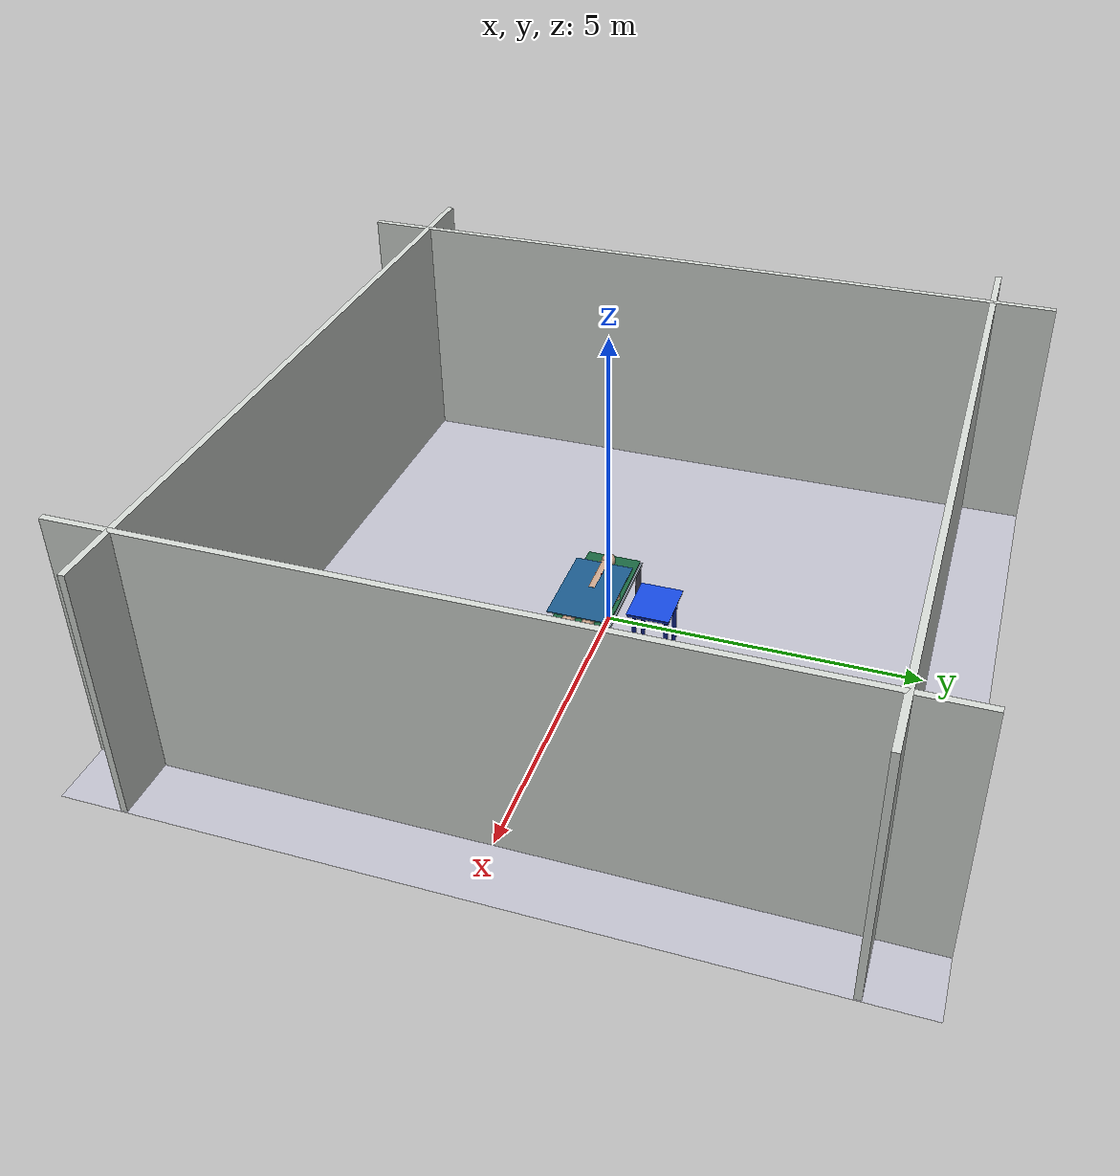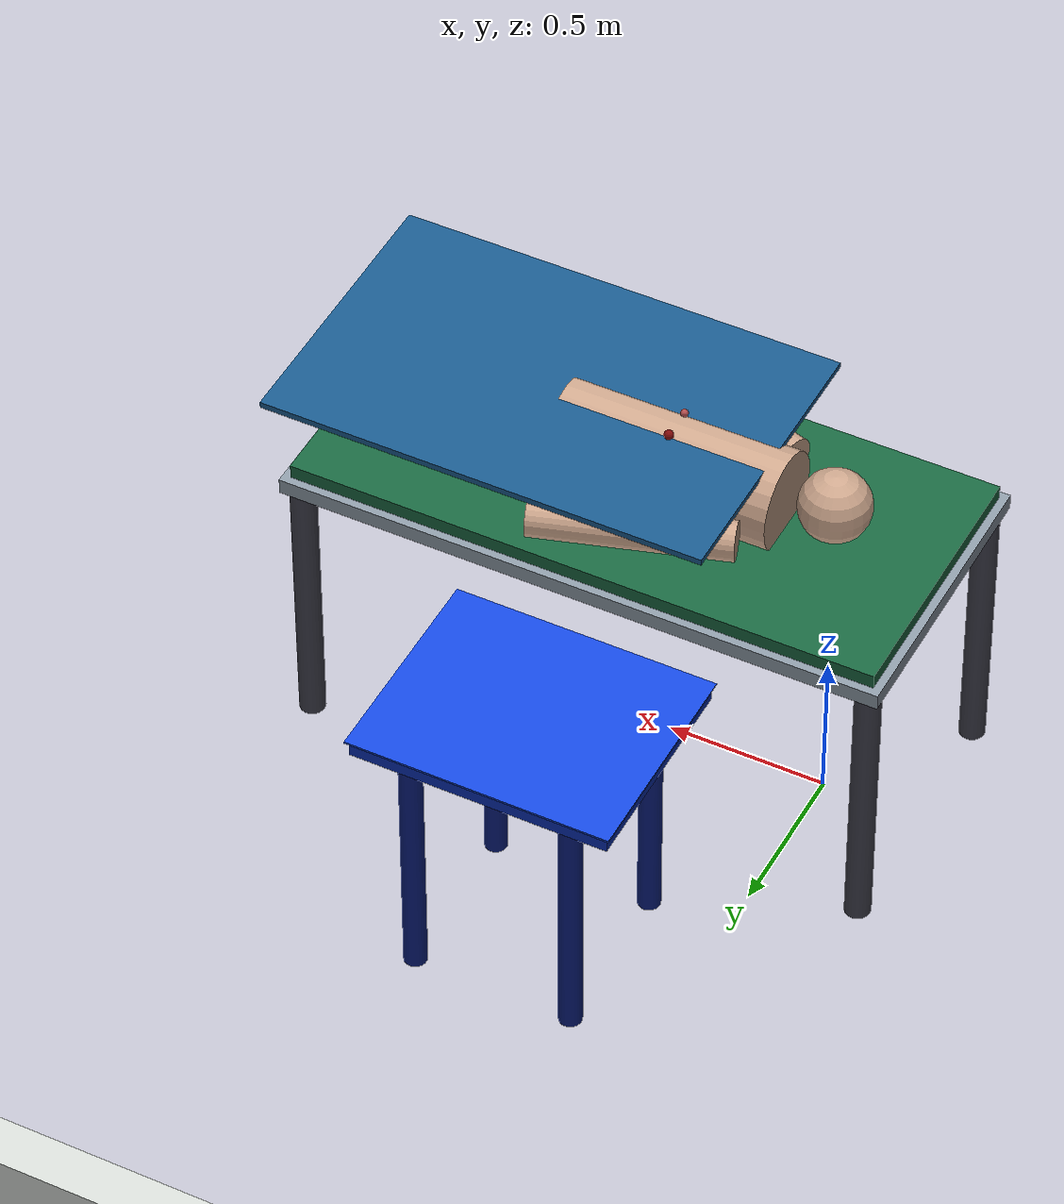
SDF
<sdf version="1.9">
 <world name="surgical_or_world">
  <physics name="default_physics" default="true" type="ode">
   <real_time_update_rate>1000.0</real_time_update_rate>
   <max_step_size>0.001</max_step_size>
   <real_time_factor>1</real_time_factor>
  </physics>
  <plugin filename="gz-sim-physics-system" name="gz::sim::systems::Physics"/>
  <plugin filename="gz-sim-user-commands-system" name="gz::sim::systems::UserCommands"/>
  <plugin filename="gz-sim-scene-broadcaster-system" name="gz::sim::systems::SceneBroadcaster"/>
  <plugin filename="gz-sim-sensors-system" name="gz::sim::systems::Sensors">
   <render_engine>ogre2</render_engine>
  </plugin>
  <plugin filename="gz-sim-contact-system" name="gz::sim::systems::Contact"/>
  <plugin filename="gz-sim-forcetorque-system" name="gz::sim::systems::ForceTorque"/>
  <light type="spot" name="surgical_light_main">
   <pose>0 0 3.5 0 0 0</pose>
   <diffuse>1.0 1.0 0.95 1</diffuse>
   <specular>0.9 0.9 0.85 1</specular>
   <attenuation>
    <range>12</range>
    <constant>0.08</constant>
    <linear>0.01</linear>
    <quadratic>0.001</quadratic>
   </attenuation>
   <direction>0 0 -1</direction>
   <spot><inner_angle>1.2</inner_angle><outer_angle>1.8</outer_angle><falloff>1.0</falloff></spot>
  </light>
  <light type="directional" name="ambient_or">
   <cast_shadows>false</cast_shadows>
   <pose>0 0 5 0 0 0</pose>
   <diffuse>0.45 0.45 0.50 1</diffuse>
   <specular>0.1 0.1 0.1 1</specular>
   <direction>0 0 -1</direction>
  </light>
  <model name="or_floor">
   <static>true</static>
   <link name="floor_link">
    <collision name="floor_collision">
     <geometry><plane><normal>0 0 1</normal><size>12 12</size></plane></geometry>
     <surface><friction><ode><mu>0.9</mu><mu2>0.9</mu2></ode></friction></surface>
    </collision>
    <visual name="floor_visual">
     <geometry><plane><normal>0 0 1</normal><size>12 12</size></plane></geometry>
     <material><ambient>0.80 0.80 0.85 1</ambient><diffuse>0.75 0.75 0.80 1</diffuse></material>
    </visual>
   </link>
  </model>
  <model name="or_wall_back">
   <static>true</static>
   <pose>5 0 2 0 0 0</pose>
   <link name="wall_link">
    <collision name="c"><geometry><box><size>0.1 12 4</size></box></geometry></collision>
    <visual name="v">
     <geometry><box><size>0.1 12 4</size></box></geometry>
     <material><ambient>0.85 0.87 0.85 1</ambient><diffuse>0.83 0.85 0.83 1</diffuse></material>
    </visual>
   </link>
  </model>
  <model name="or_wall_front">
   <static>true</static>
   <pose>-5 0 2 0 0 0</pose>
   <link name="wall_link">
    <collision name="c"><geometry><box><size>0.1 12 4</size></box></geometry></collision>
    <visual name="v">
     <geometry><box><size>0.1 12 4</size></box></geometry>
     <material><ambient>0.85 0.87 0.85 1</ambient><diffuse>0.83 0.85 0.83 1</diffuse></material>
    </visual>
   </link>
  </model>
  <model name="or_wall_left">
   <static>true</static>
   <pose>0 5 2 0 0 0</pose>
   <link name="wall_link">
    <collision name="c"><geometry><box><size>12 0.1 4</size></box></geometry></collision>
    <visual name="v">
     <geometry><box><size>12 0.1 4</size></box></geometry>
     <material><ambient>0.85 0.87 0.85 1</ambient><diffuse>0.83 0.85 0.83 1</diffuse></material>
    </visual>
   </link>
  </model>
  <model name="or_wall_right">
   <static>true</static>
   <pose>0 -5 2 0 0 0</pose>
   <link name="wall_link">
    <collision name="c"><geometry><box><size>12 0.1 4</size></box></geometry></collision>
    <visual name="v">
     <geometry><box><size>12 0.1 4</size></box></geometry>
     <material><ambient>0.85 0.87 0.85 1</ambient><diffuse>0.83 0.85 0.83 1</diffuse></material>
    </visual>
   </link>
  </model>
  <model name="robot_table_leg1">
   <static>true</static>
   <pose>0.75 1.15 0.425 0 0 0</pose>
   <link name="l">
    <collision name="c">
     <geometry><cylinder><radius>0.035</radius><length>0.85</length></cylinder></geometry>
    </collision>
    <visual name="v">
     <geometry><cylinder><radius>0.035</radius><length>0.85</length></cylinder></geometry>
     <material><ambient>0.05 0.15 0.55 1</ambient><diffuse>0.04 0.12 0.50 1</diffuse></material>
    </visual>
   </link>
  </model>
  <model name="robot_table_leg2">
   <static>true</static>
   <pose>0.75 0.65 0.425 0 0 0</pose>
   <link name="l">
    <collision name="c">
     <geometry><cylinder><radius>0.035</radius><length>0.85</length></cylinder></geometry>
    </collision>
    <visual name="v">
     <geometry><cylinder><radius>0.035</radius><length>0.85</length></cylinder></geometry>
     <material><ambient>0.05 0.15 0.55 1</ambient><diffuse>0.04 0.12 0.50 1</diffuse></material>
    </visual>
   </link>
  </model>
  <model name="robot_table_leg3">
   <static>true</static>
   <pose>0.25 1.15 0.425 0 0 0</pose>
   <link name="l">
    <collision name="c">
     <geometry><cylinder><radius>0.035</radius><length>0.85</length></cylinder></geometry>
    </collision>
    <visual name="v">
     <geometry><cylinder><radius>0.035</radius><length>0.85</length></cylinder></geometry>
     <material><ambient>0.05 0.15 0.55 1</ambient><diffuse>0.04 0.12 0.50 1</diffuse></material>
    </visual>
   </link>
  </model>
  <model name="robot_table_leg4">
   <static>true</static>
   <pose>0.25 0.65 0.425 0 0 0</pose>
   <link name="l">
    <collision name="c">
     <geometry><cylinder><radius>0.035</radius><length>0.85</length></cylinder></geometry>
    </collision>
    <visual name="v">
     <geometry><cylinder><radius>0.035</radius><length>0.85</length></cylinder></geometry>
     <material><ambient>0.05 0.15 0.55 1</ambient><diffuse>0.04 0.12 0.50 1</diffuse></material>
    </visual>
   </link>
  </model>
  <model name="robot_table_surface">
   <static>true</static>
   <pose>0.50 0.9 0.875 0 0 0</pose>
   <link name="table_link">
    <collision name="table_col">
     <geometry><box><size>0.80 0.65 0.05</size></box></geometry>
     <surface><friction><ode><mu>0.85</mu><mu2>0.85</mu2></ode></friction></surface>
    </collision>
    <visual name="table_vis">
     <geometry><box><size>0.80 0.65 0.05</size></box></geometry>
     <material>
      <ambient>0.05 0.20 0.75 1</ambient>
      <diffuse>0.04 0.18 0.70 1</diffuse>
      <specular>0.25 0.35 0.80 1</specular>
     </material>
    </visual>
   </link>
  </model>
  <model name="robot_table_trim">
   <static>true</static>
   <pose>0.50 0.9 0.903 0 0 0</pose>
   <link name="trim_link">
    <visual name="trim_vis">
     <geometry><box><size>0.82 0.67 0.006</size></box></geometry>
     <material>
      <ambient>0.10 0.30 0.90 1</ambient>
      <diffuse>0.08 0.28 0.88 1</diffuse>
      <specular>0.5 0.6 1.0 1</specular>
     </material>
    </visual>
   </link>
  </model>
  <model name="or_table_leg1">
   <static>true</static>
   <pose>1.5 0.4 0.45 0 0 0</pose>
   <link name="l">
    <collision name="c">
     <geometry><cylinder><radius>0.04</radius><length>0.9</length></cylinder></geometry>
    </collision>
    <visual name="v">
     <geometry><cylinder><radius>0.04</radius><length>0.9</length></cylinder></geometry>
     <material><ambient>0.3 0.3 0.35 1</ambient><diffuse>0.25 0.25 0.3 1</diffuse></material>
    </visual>
   </link>
  </model>
  <model name="or_table_leg2">
   <static>true</static>
   <pose>1.5 -0.4 0.45 0 0 0</pose>
   <link name="l">
    <collision name="c">
     <geometry><cylinder><radius>0.04</radius><length>0.9</length></cylinder></geometry>
    </collision>
    <visual name="v">
     <geometry><cylinder><radius>0.04</radius><length>0.9</length></cylinder></geometry>
     <material><ambient>0.3 0.3 0.35 1</ambient><diffuse>0.25 0.25 0.3 1</diffuse></material>
    </visual>
   </link>
  </model>
  <model name="or_table_leg3">
   <static>true</static>
   <pose>-0.3 0.4 0.45 0 0 0</pose>
   <link name="l">
    <collision name="c">
     <geometry><cylinder><radius>0.04</radius><length>0.9</length></cylinder></geometry>
    </collision>
    <visual name="v">
     <geometry><cylinder><radius>0.04</radius><length>0.9</length></cylinder></geometry>
     <material><ambient>0.3 0.3 0.35 1</ambient><diffuse>0.25 0.25 0.3 1</diffuse></material>
    </visual>
   </link>
  </model>
  <model name="or_table_leg4">
   <static>true</static>
   <pose>-0.3 -0.4 0.45 0 0 0</pose>
   <link name="l">
    <collision name="c">
     <geometry><cylinder><radius>0.04</radius><length>0.9</length></cylinder></geometry>
    </collision>
    <visual name="v">
     <geometry><cylinder><radius>0.04</radius><length>0.9</length></cylinder></geometry>
     <material><ambient>0.3 0.3 0.35 1</ambient><diffuse>0.25 0.25 0.3 1</diffuse></material>
    </visual>
   </link>
  </model>
  <model name="or_table_surface">
   <static>true</static>
   <pose>0.6 0 0.93 0 0 0</pose>
   <link name="table_link">
    <collision name="table_col">
     <geometry><box><size>1.9 0.9 0.05</size></box></geometry>
     <surface><friction><ode><mu>0.7</mu><mu2>0.7</mu2></ode></friction></surface>
    </collision>
    <visual name="table_vis">
     <geometry><box><size>1.9 0.9 0.05</size></box></geometry>
     <material>
      <ambient>0.60 0.65 0.70 1</ambient>
      <diffuse>0.55 0.60 0.65 1</diffuse>
      <specular>0.3 0.3 0.3 1</specular>
     </material>
    </visual>
   </link>
  </model>
  <model name="or_table_mattress">
   <static>true</static>
   <pose>0.6 0 0.97 0 0 0</pose>
   <link name="mattress_link">
    <collision name="mat_col">
     <geometry><box><size>1.85 0.85 0.06</size></box></geometry>
     <surface><friction><ode><mu>0.5</mu><mu2>0.5</mu2></ode></friction></surface>
    </collision>
    <visual name="mat_vis">
     <geometry><box><size>1.85 0.85 0.06</size></box></geometry>
     <material><ambient>0.1 0.45 0.3 1</ambient><diffuse>0.1 0.4 0.25 1</diffuse></material>
    </visual>
   </link>
  </model>
  <model name="cavity_bottom">
   <static>true</static>
   <pose>0.5 0 0.975 0 0 0</pose>
   <link name="l">
    <collision name="c"><geometry><box><size>0.32 0.22 0.01</size></box></geometry></collision>
    <visual name="v">
     <geometry><box><size>0.32 0.22 0.01</size></box></geometry>
     <material><ambient>0.55 0.50 0.42 1</ambient><diffuse>0.50 0.45 0.38 1</diffuse></material>
    </visual>
   </link>
  </model>
  <model name="cavity_wall_left">
   <static>true</static>
   <pose>0.5 -0.105 1.045 0 0 0</pose>
   <link name="l">
    <collision name="c"><geometry><box><size>0.32 0.01 0.14</size></box></geometry></collision>
    <visual name="v">
     <geometry><box><size>0.32 0.01 0.14</size></box></geometry>
     <material><ambient>0.55 0.50 0.42 1</ambient><diffuse>0.50 0.45 0.38 1</diffuse></material>
    </visual>
   </link>
  </model>
  <model name="cavity_wall_right">
   <static>true</static>
   <pose>0.5 0.105 1.045 0 0 0</pose>
   <link name="l">
    <collision name="c"><geometry><box><size>0.32 0.01 0.14</size></box></geometry></collision>
    <visual name="v">
     <geometry><box><size>0.32 0.01 0.14</size></box></geometry>
     <material><ambient>0.55 0.50 0.42 1</ambient><diffuse>0.50 0.45 0.38 1</diffuse></material>
    </visual>
   </link>
  </model>
  <model name="cavity_wall_back">
   <static>true</static>
   <pose>0.655 0 1.045 0 0 0</pose>
   <link name="l">
    <collision name="c"><geometry><box><size>0.01 0.22 0.14</size></box></geometry></collision>
    <visual name="v">
     <geometry><box><size>0.01 0.22 0.14</size></box></geometry>
     <material><ambient>0.55 0.50 0.42 1</ambient><diffuse>0.50 0.45 0.38 1</diffuse></material>
    </visual>
   </link>
  </model>
  <model name="cavity_wall_front">
   <static>true</static>
   <pose>0.345 0 1.045 0 0 0</pose>
   <link name="l">
    <collision name="c"><geometry><box><size>0.01 0.22 0.14</size></box></geometry></collision>
    <visual name="v">
     <geometry><box><size>0.01 0.22 0.14</size></box></geometry>
     <material><ambient>0.55 0.50 0.42 1</ambient><diffuse>0.50 0.45 0.38 1</diffuse></material>
    </visual>
   </link>
  </model>
  <model name="liver_organ">
   <static>true</static>
   <pose>0.5 0.05 1.25 0 0 0</pose>
   <link name="liver_link">
    <collision name="liver_col">
     <geometry><sphere><radius>0.015</radius></sphere></geometry>
     <surface>
      <friction><ode><mu>1.5</mu><mu2>1.5</mu2></ode></friction>
      <contact><ode><kp>10000</kp><kd>10</kd></ode></contact>
     </surface>
    </collision>
    <visual name="liver_vis">
     <geometry><sphere><radius>0.015</radius></sphere></geometry>
     <material><ambient>0.60 0.08 0.08 1</ambient><diffuse>0.50 0.04 0.04 1</diffuse></material>
    </visual>
   </link>
  </model>
  <model name="stomach_organ">
   <static>true</static>
   <pose>0.5 -0.05 1.25 0 0 0</pose>
   <link name="stomach_link">
    <collision name="stomach_col">
     <geometry><sphere><radius>0.012</radius></sphere></geometry>
     <surface>
      <friction><ode><mu>1.2</mu><mu2>1.2</mu2></ode></friction>
      <contact><ode><kp>8000</kp><kd>8</kd></ode></contact>
     </surface>
    </collision>
    <visual name="stomach_vis">
     <geometry><sphere><radius>0.012</radius></sphere></geometry>
     <material><ambient>0.8 0.4 0.4 1</ambient><diffuse>0.7 0.3 0.3 1</diffuse></material>
    </visual>
   </link>
  </model>
  <model name="fake_human">
   <static>true</static>
   <pose>0.6 0 1.0 0 0 0</pose>
   <link name="body_link">
    <visual name="torso_visual">
     <pose>-0.1 0 0.1 0 1.5708 0</pose>
     <geometry><cylinder><radius>0.15</radius><length>0.7</length></cylinder></geometry>
     <material><ambient>0.85 0.7 0.6 1</ambient><diffuse>0.8 0.65 0.55 1</diffuse></material>
    </visual>
    <visual name="head_visual">
     <pose>-0.6 0 0.15 0 0 0</pose>
     <geometry><sphere><radius>0.11</radius></sphere></geometry>
     <material><ambient>0.85 0.7 0.6 1</ambient><diffuse>0.8 0.65 0.55 1</diffuse></material>
    </visual>
    <visual name="leg_l_visual">
     <pose>0.6 0.15 0.08 0 1.5708 0</pose>
     <geometry><cylinder><radius>0.09</radius><length>0.8</length></cylinder></geometry>
     <material><ambient>0.85 0.7 0.6 1</ambient><diffuse>0.8 0.65 0.55 1</diffuse></material>
    </visual>
    <visual name="leg_r_visual">
     <pose>0.6 -0.15 0.08 0 1.5708 0</pose>
     <geometry><cylinder><radius>0.09</radius><length>0.8</length></cylinder></geometry>
     <material><ambient>0.85 0.7 0.6 1</ambient><diffuse>0.8 0.65 0.55 1</diffuse></material>
    </visual>
    <visual name="arm_l_visual">
     <pose>-0.1 0.28 0.08 0 1.5708 0.3</pose>
     <geometry><cylinder><radius>0.06</radius><length>0.6</length></cylinder></geometry>
     <material><ambient>0.85 0.7 0.6 1</ambient><diffuse>0.8 0.65 0.55 1</diffuse></material>
    </visual>
    <visual name="arm_r_visual">
     <pose>-0.1 -0.28 0.08 0 1.5708 -0.3</pose>
     <geometry><cylinder><radius>0.06</radius><length>0.6</length></cylinder></geometry>
     <material><ambient>0.85 0.7 0.6 1</ambient><diffuse>0.8 0.65 0.55 1</diffuse></material>
    </visual>
    <visual name="surgical_drape">
     <pose>0.3 0 0.23 0 0 0</pose>
     <geometry><box><size>1.4 0.9 0.02</size></box></geometry>
     <material><ambient>0.1 0.4 0.6 1</ambient><diffuse>0.1 0.35 0.55 1</diffuse></material>
    </visual>
   </link>
  </model>
  <model name="surgical_camera">
   <static>true</static>
   <pose>0.5 0 2.0 0 1.5708 0</pose>
   <link name="link">
    <sensor name="camera" type="camera">
     <camera>
      <horizontal_fov>1.047</horizontal_fov>
      <image><width>640</width><height>480</height></image>
      <clip><near>0.1</near><far>100</far></clip>
     </camera>
     <always_on>1</always_on>
     <update_rate>30</update_rate>
     <visualize>true</visualize>
     <topic>surgical_camera/image_raw</topic>
    </sensor>
   </link>
  </model>
 </world>
</sdf>
